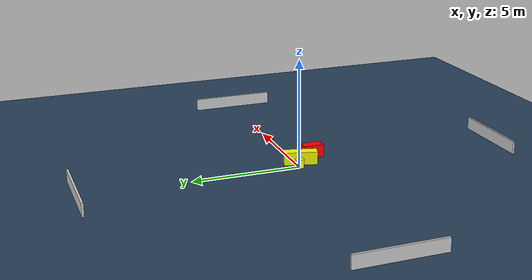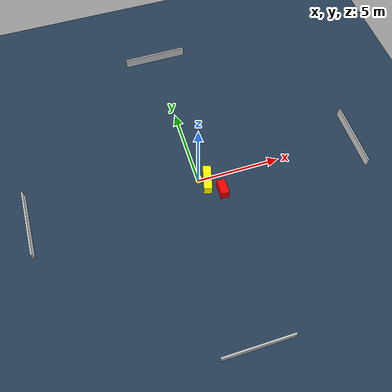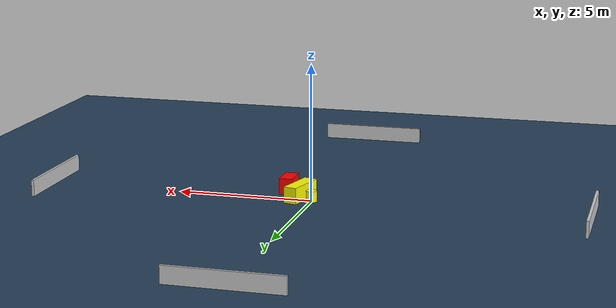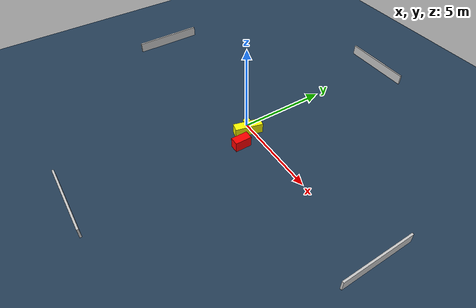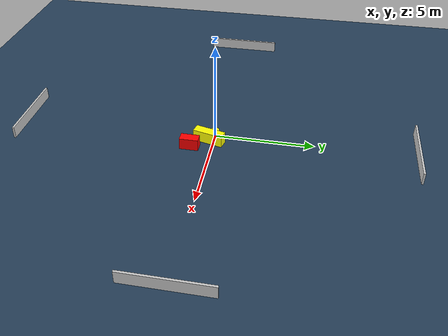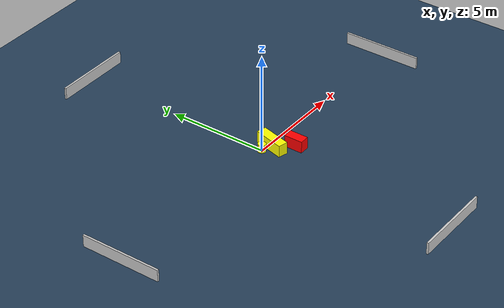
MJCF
<?xml version="1.0" ?>
<mujoco model="generated_environment">
  <option timestep="0.01" integrator="RK4" cone="elliptic"/>
  <default>
    <geom density="1"/>
  </default>
  <asset>
    <texture builtin="gradient" height="3072" name="skybox" rgb1="0.3 0.5 0.7" rgb2="0 0 0" type="skybox" width="512"/>
    <texture builtin="checker" height="300" name="groundplane" rgb1="0.2 0.3 0.4" rgb2="0.1 0.2 0.3" type="2d" width="300"/>
    <material name="groundplane" reflectance="0.2" texrepeat="5 5" texture="groundplane"/>
  </asset>
  <worldbody>
    <light dir="0 0 -1" directional="true" pos="0 0 1.5"/>
    <geom condim="3" friction="0.5 0.005 0.001" material="groundplane" name="floor" pos="0 0 0" size="0 0 0.05" type="plane"/>
    <body name="walls">
      <geom name="wall_1" condim="4" pos="-10.0 0.0 0.3" rgba="0.800000011920929 0.800000011920929 0.800000011920929 1.0" size="0.05 2.0 0.3" type="box"/>
      <geom name="wall_2" condim="4" pos="10.0 0.0 0.3" rgba="0.800000011920929 0.800000011920929 0.800000011920929 1.0" size="0.05 2.0 0.3" type="box"/>
      <geom name="wall_3" condim="4" pos="0.0 -10.0 0.3" rgba="0.800000011920929 0.800000011920929 0.800000011920929 1.0" size="2.0 0.05 0.3" type="box"/>
      <geom name="wall_4" condim="4" pos="0.0 10.0 0.3" rgba="0.800000011920929 0.800000011920929 0.800000011920929 1.0" size="2.0 0.05 0.3" type="box"/>
    </body>
    <body name="robot">
      <joint name="joint_x" type="slide" pos="0 0 0" axis="1 0 0"/>
      <joint name="joint_y" type="slide" pos="0 0 0" axis="0 1 0"/>
      <geom name="robot" type="cylinder" pos="0.0 0.0 0.2" size="0.2 0.2 0.0" mass="5.0" friction="1.0 0.005 0.0001" condim="4" rgba="1.0 1.0 0.0 1.0"/>
    </body>
    <body name="obstacle_1_movable">
      <geom name="obstacle_1_movable" condim="4" pos="0.47619294171013005 -0.2269561169159805 0.3" euler="0 0 345.47024992456204" friction="0.0 0.005 0.001" rgba="1.0 1.0 0.0 1.0" size="0.24410392784604104 0.7732396223746352 0.3" type="box" mass="0.1"/>
      <joint type="free"/>
    </body>
    <body name="obstacle_2_static">
      <geom name="obstacle_2_static" condim="4" pos="1.1488028216072221 -1.0829416642463676 0.3" euler="0 0 89.63326242163937" friction="0.0 0.005 0.001" rgba="1.0 0.0 0.0 1.0" size="0.4684536463512011 0.24457759116038033 0.3" type="box"/>
    </body>
  </worldbody>
  <actuator>
    <motor name="actuator_x" joint="joint_x" gear="1" ctrlrange="-1 1"/>
    <motor name="actuator_y" joint="joint_y" gear="1" ctrlrange="-1 1"/>
  </actuator>
</mujoco>
